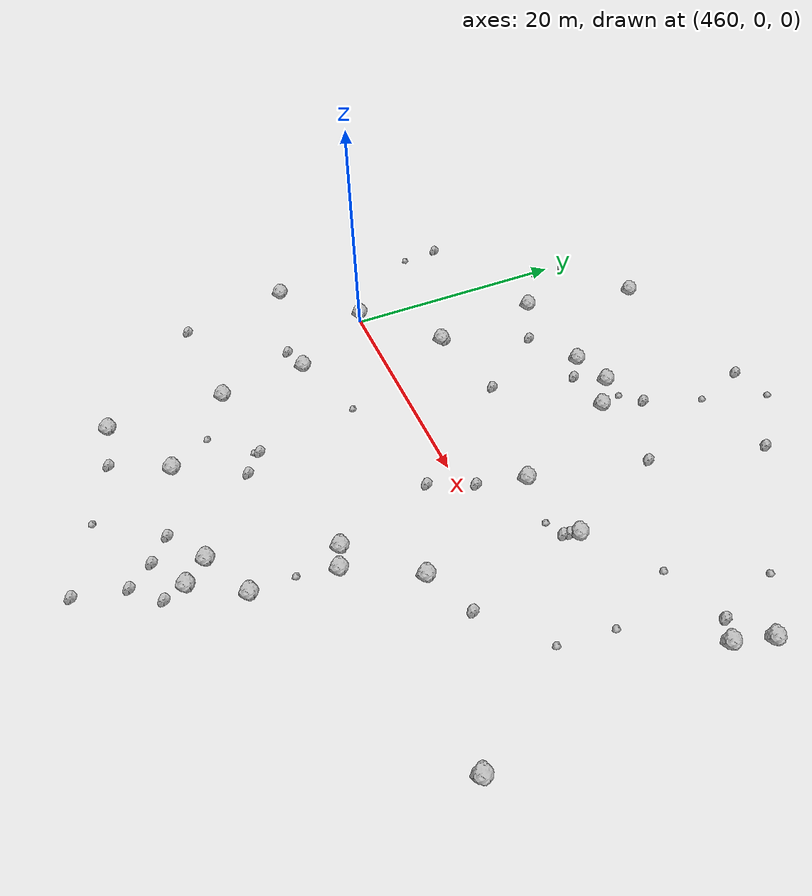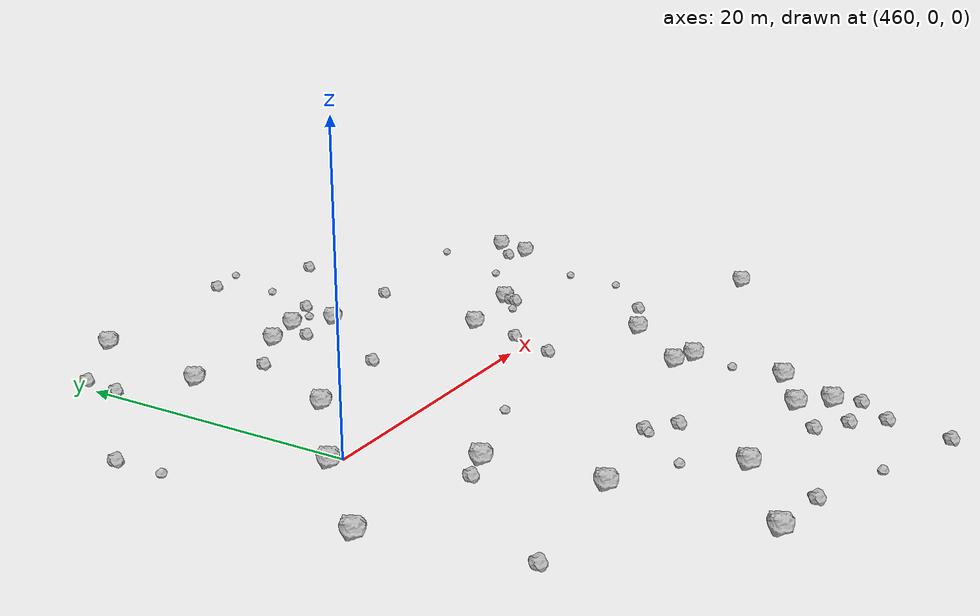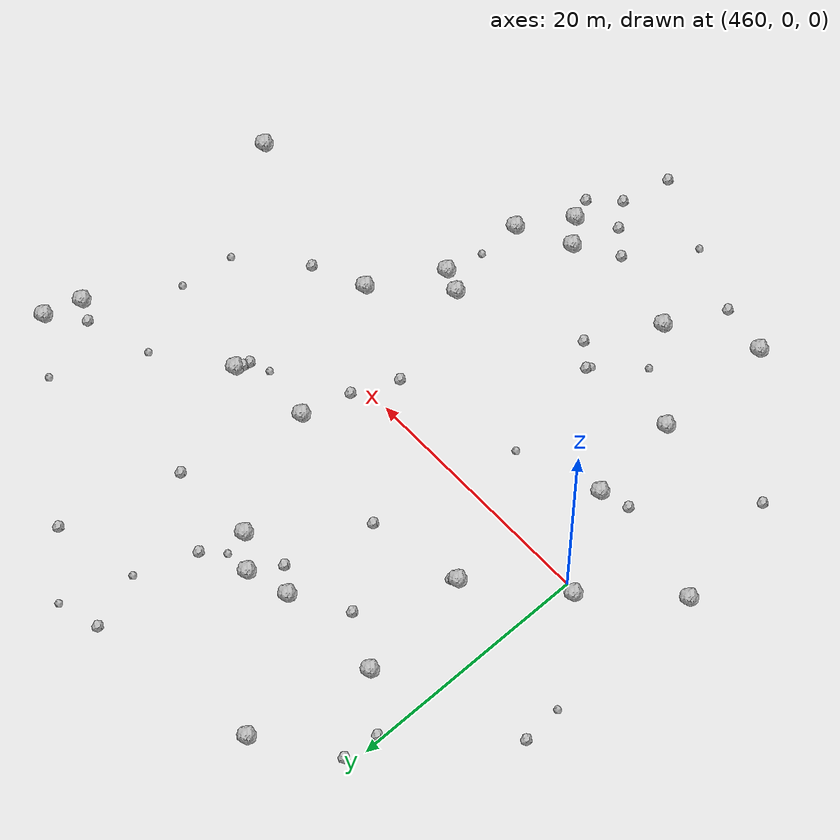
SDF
<sdf version="1.6">
 <world name="default">
  <include><uri>model://sun</uri></include>
  <model name="rock1_12_4">
   <include><uri>model://rock1</uri><pose>453.1091130825989 -5.7617871654119845 0.5 0 0 0</pose></include>
  </model>
  <model name="rock1_12_5">
   <include><uri>model://rock1</uri><pose>464.60739064996676 -14.572239380947398 0.5 0 0 0</pose></include>
  </model>
  <model name="rock1_12_6">
   <include><uri>model://rock1</uri><pose>485.75380457455236 -11.468251144124814 0.5 0 0 0</pose></include>
  </model>
  <model name="rock1_12_7">
   <include><uri>model://rock1</uri><pose>464.6025659182254 15.52083574964572 0.5 0 0 0</pose></include>
  </model>
  <model name="rock1_12_8">
   <include><uri>model://rock1</uri><pose>502.6167086543792 11.103410946437073 0.5 0 0 0</pose></include>
  </model>
  <model name="rock1_12_9">
   <include><uri>model://rock1</uri><pose>488.9204654406699 -5.8499483654377755 0.5 0 0 0</pose></include>
  </model>
  <model name="rock1_12_10">
   <include><uri>model://rock1</uri><pose>471.07267568691856 -20.488842103227086 0.5 0 0 0</pose></include>
  </model>
  <model name="rock1_12_11">
   <include><uri>model://rock1</uri><pose>464.5594891514453 -24.41132192413791 0.5 0 0 0</pose></include>
  </model>
  <model name="rock1_12_12">
   <include><uri>model://rock1</uri><pose>490.26428800007176 6.258183904330849 0.5 0 0 0</pose></include>
  </model>
  <model name="rock1_12_13">
   <include><uri>model://rock1</uri><pose>480.88442406198874 -20.216655673399913 0.5 0 0 0</pose></include>
  </model>
  <model name="rock1_12_14">
   <include><uri>model://rock1</uri><pose>483.9096465495513 -10.742859135012782 0.5 0 0 0</pose></include>
  </model>
  <model name="rock1_12_15">
   <include><uri>model://rock1</uri><pose>465.6750051011246 5.843905020765185 0.5 0 0 0</pose></include>
  </model>
  <model name="rock1_12_16">
   <include><uri>model://rock1</uri><pose>503.85673230466995 -8.618771926015437 0.5 0 0 0</pose></include>
  </model>
  <model name="rock1_12_17">
   <include><uri>model://rock1</uri><pose>503.5794184780342 14.1183280197002 0.5 0 0 0</pose></include>
  </model>
  <model name="rock1_12_18">
   <include><uri>model://rock1</uri><pose>476.6569625497939 16.91280400936588 0.5 0 0 0</pose></include>
  </model>
  <model name="rock1_12_19">
   <include><uri>model://rock1</uri><pose>463.8895422575715 -7.007437460438968 0.5 0 0 0</pose></include>
  </model>
  <model name="rock1_12_20">
   <include><uri>model://rock1</uri><pose>482.5468966107199 -22.090061400516937 0.5 0 0 0</pose></include>
  </model>
  <model name="rock1_12_21">
   <include><uri>model://rock1</uri><pose>473.23060436580363 15.951299245606492 0.5 0 0 0</pose></include>
  </model>
  <model name="rock1_12_22">
   <include><uri>model://rock1</uri><pose>485.0769910410563 -18.095207833101654 0.5 0 0 0</pose></include>
  </model>
  <model name="rock1_12_23">
   <include><uri>model://rock1</uri><pose>466.66375484443927 25.642600332944063 0.5 0 0 0</pose></include>
  </model>
  <model name="rock1_12_24">
   <include><uri>model://rock1</uri><pose>479.17238580531546 14.990841265295018 0.5 0 0 0</pose></include>
  </model>
  <model name="rock1_12_25">
   <include><uri>model://rock1</uri><pose>459.1078357721125 0.28452640396481144 0.5 0 0 0</pose></include>
  </model>
  <model name="rock1_12_26">
   <include><uri>model://rock1</uri><pose>483.81055327324214 5.207980769441164 0.5 0 0 0</pose></include>
  </model>
  <model name="rock2_12_0">
   <include><uri>model://rock2</uri><pose>493.03801484725005 -4.046561811167344 0.3 0 0 0</pose></include>
  </model>
  <model name="rock2_12_1">
   <include><uri>model://rock2</uri><pose>479.575383017274 -23.95101365585909 0.3 0 0 0</pose></include>
  </model>
  <model name="rock2_12_2">
   <include><uri>model://rock2</uri><pose>472.2542616229906 -13.517600349231792 0.3 0 0 0</pose></include>
  </model>
  <model name="rock2_12_3">
   <include><uri>model://rock2</uri><pose>488.8256638786982 24.889540131864756 0.3 0 0 0</pose></include>
  </model>
  <model name="rock2_12_4">
   <include><uri>model://rock2</uri><pose>473.3219536363663 7.329845345472208 0.3 0 0 0</pose></include>
  </model>
  <model name="rock2_12_5">
   <include><uri>model://rock2</uri><pose>481.10469265400997 -25.895763483578243 0.3 0 0 0</pose></include>
  </model>
  <model name="rock2_12_6">
   <include><uri>model://rock2</uri><pose>460.37439980926575 18.59250195278699 0.3 0 0 0</pose></include>
  </model>
  <model name="rock2_12_7">
   <include><uri>model://rock2</uri><pose>480.2412477119324 18.508064085210037 0.3 0 0 0</pose></include>
  </model>
  <model name="rock2_12_8">
   <include><uri>model://rock2</uri><pose>477.5894258902599 -22.345640670648095 0.3 0 0 0</pose></include>
  </model>
  <model name="rock2_12_9">
   <include><uri>model://rock2</uri><pose>475.15333576075284 14.52043635865845 0.3 0 0 0</pose></include>
  </model>
  <model name="rock2_12_10">
   <include><uri>model://rock2</uri><pose>480.1570618516891 -29.85677163409519 0.3 0 0 0</pose></include>
  </model>
  <model name="rock2_12_11">
   <include><uri>model://rock2</uri><pose>480.5996542472024 27.97480555096041 0.3 0 0 0</pose></include>
  </model>
  <model name="rock2_12_12">
   <include><uri>model://rock2</uri><pose>474.0908250213737 -15.01240958522353 0.3 0 0 0</pose></include>
  </model>
  <model name="rock2_12_13">
   <include><uri>model://rock2</uri><pose>461.51690861475055 -7.68917289967381 0.3 0 0 0</pose></include>
  </model>
  <model name="rock2_12_14">
   <include><uri>model://rock2</uri><pose>489.8335187582361 5.119662123842367 0.3 0 0 0</pose></include>
  </model>
  <model name="rock2_12_15">
   <include><uri>model://rock2</uri><pose>486.17219962283747 15.180863437276109 0.3 0 0 0</pose></include>
  </model>
  <model name="rock2_12_16">
   <include><uri>model://rock2</uri><pose>500.8981734048272 11.930405946493195 0.3 0 0 0</pose></include>
  </model>
  <model name="rock2_12_17">
   <include><uri>model://rock2</uri><pose>481.0345586747487 -2.363534972442892 0.3 0 0 0</pose></include>
  </model>
  <model name="rock2_12_18">
   <include><uri>model://rock2</uri><pose>455.05049593863623 -15.35641506587639 0.3 0 0 0</pose></include>
  </model>
  <model name="rock2_12_19">
   <include><uri>model://rock2</uri><pose>483.11540795732424 -23.812877590585856 0.3 0 0 0</pose></include>
  </model>
  <model name="rock2_12_20">
   <include><uri>model://rock2</uri><pose>482.67451484142657 1.214333016488819 0.3 0 0 0</pose></include>
  </model>
  <model name="rock2_12_21">
   <include><uri>model://rock2</uri><pose>468.65317298829603 -25.110940422746975 0.3 0 0 0</pose></include>
  </model>
  <model name="rock2_12_22">
   <include><uri>model://rock2</uri><pose>452.8732535040449 10.839329143555702 0.3 0 0 0</pose></include>
  </model>
  <model name="rock2_12_23">
   <include><uri>model://rock2</uri><pose>460.6828673269417 21.538514047184584 0.3 0 0 0</pose></include>
  </model>
  <model name="rock2_12_24">
   <include><uri>model://rock2</uri><pose>489.9430542480882 5.627785324635667 0.3 0 0 0</pose></include>
  </model>
  <model name="rock2_12_25">
   <include><uri>model://rock2</uri><pose>468.92793910592184 13.348379713951864 0.3 0 0 0</pose></include>
  </model>
  <model name="rock2_12_26">
   <include><uri>model://rock2</uri><pose>466.03972727372906 6.148511067838136 0.3 0 0 0</pose></include>
  </model>
  <model name="rock3_12_0">
   <include><uri>model://rock3</uri><pose>453.0823167215998 7.48169118509103 0.2 0 0 0</pose></include>
  </model>
  <model name="rock3_12_1">
   <include><uri>model://rock3</uri><pose>497.8166313668746 0.017404440779085206 0.2 0 0 0</pose></include>
  </model>
  <model name="rock3_12_2">
   <include><uri>model://rock3</uri><pose>483.96071288455914 28.85179783722903 0.2 0 0 0</pose></include>
  </model>
  <model name="rock3_12_3">
   <include><uri>model://rock3</uri><pose>482.0433014020137 23.334371986783637 0.2 0 0 0</pose></include>
  </model>
  <model name="rock3_12_4">
   <include><uri>model://rock3</uri><pose>488.22436624354646 4.444786939946873 0.2 0 0 0</pose></include>
  </model>
  <model name="rock3_12_5">
   <include><uri>model://rock3</uri><pose>469.0113462843797 -17.10835499064224 0.2 0 0 0</pose></include>
  </model>
  <model name="rock3_12_6">
   <include><uri>model://rock3</uri><pose>470.6477796147479 -4.766738491849679 0.2 0 0 0</pose></include>
  </model>
  <model name="rock3_12_7">
   <include><uri>model://rock3</uri><pose>474.0165214842234 -27.36357259530558 0.2 0 0 0</pose></include>
  </model>
  <model name="rock3_12_8">
   <include><uri>model://rock3</uri><pose>478.69005308180965 16.954623711257938 0.2 0 0 0</pose></include>
  </model>
  <model name="rock3_12_9">
   <include><uri>model://rock3</uri><pose>495.68550631149327 10.221045027070701 0.2 0 0 0</pose></include>
  </model>
  <model name="rock3_12_10">
   <include><uri>model://rock3</uri><pose>499.0926367771053 17.23976959708412 0.2 0 0 0</pose></include>
  </model>
  <model name="rock3_12_11">
   <include><uri>model://rock3</uri><pose>498.38903395746064 4.469369537805264 0.2 0 0 0</pose></include>
  </model>
  <model name="rock3_12_12">
   <include><uri>model://rock3</uri><pose>485.00008168603205 -14.568615985603133 0.2 0 0 0</pose></include>
  </model>
  <model name="rock3_12_13">
   <include><uri>model://rock3</uri><pose>472.0429420293037 -13.938417275898765 0.2 0 0 0</pose></include>
  </model>
 </world>
</sdf>
